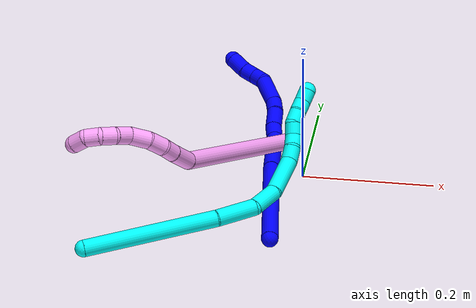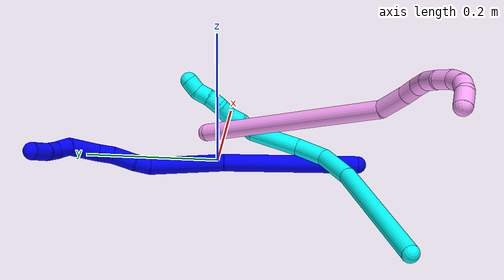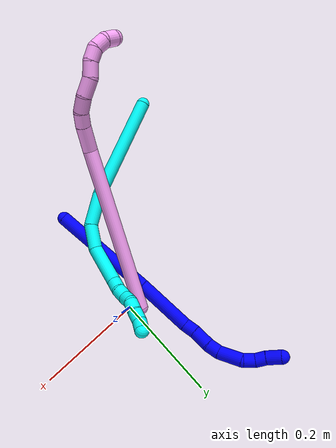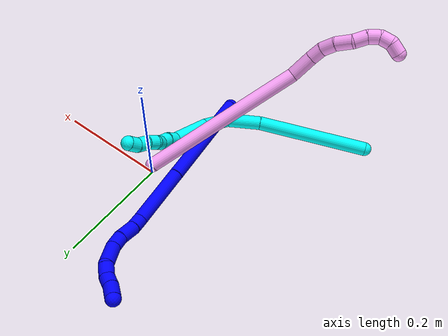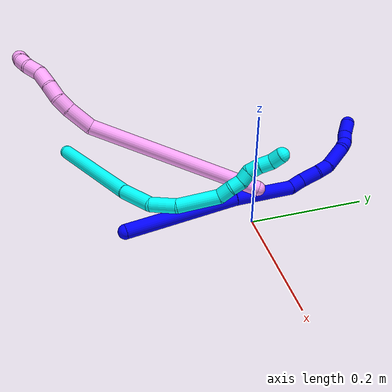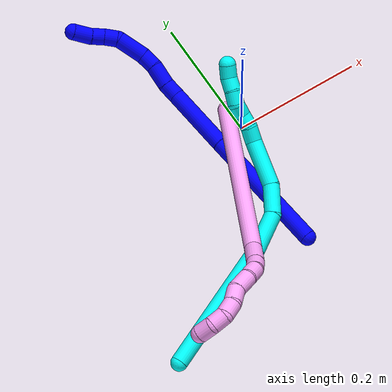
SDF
<sdf version="1.7">
 <world name="default">
  <model name="1">
   <static>0</static>
   <link name="1">
    <collision name="collision-cylinder-e_1_1_4">
     <pose>-0.009485 0.097593 -0.002834 -1.59983 -0.09684 0.099688</pose>
     <geometry><cylinder><radius>0.0125</radius><length>0.196188</length></cylinder></geometry>
     <surface>
      <friction><ode><mu>1.16</mu><mu2>1.16</mu2><slip1>0</slip1><slip2>0</slip2></ode></friction>
      <contact><ode><kp>1e+06</kp><kd>1</kd><max_vel>0</max_vel><min_depth>0.001</min_depth></ode></contact>
     </surface>
    </collision>
    <visual name="visual-cylinder-e_1_1_4">
     <pose>-0.009485 0.097593 -0.002834 -1.59983 -0.09684 0.099688</pose>
     <geometry><cylinder><radius>0.0125</radius><length>0.196188</length></cylinder></geometry>
     <material><ambient>0 0 1 1</ambient></material>
    </visual>
    <collision name="collision-cylinder-e_2_4_5">
     <pose>-0.019426 0.248966 -0.009123 -1.63495 -0.00847 0.009031</pose>
     <geometry><cylinder><radius>0.0125</radius><length>0.107785</length></cylinder></geometry>
     <surface>
      <friction><ode><mu>1.16</mu><mu2>1.16</mu2><slip1>0</slip1><slip2>0</slip2></ode></friction>
      <contact><ode><kp>1e+06</kp><kd>1</kd><max_vel>0</max_vel><min_depth>0.001</min_depth></ode></contact>
     </surface>
    </collision>
    <visual name="visual-cylinder-e_2_4_5">
     <pose>-0.019426 0.248966 -0.009123 -1.63495 -0.00847 0.009031</pose>
     <geometry><cylinder><radius>0.0125</radius><length>0.107785</length></cylinder></geometry>
     <material><ambient>0 0 1 1</ambient></material>
    </visual>
    <collision name="collision-cylinder-e_3_5_6">
     <pose>-0.024044 0.313955 -0.011457 -1.47107 -0.353862 0.320826</pose>
     <geometry><cylinder><radius>0.0125</radius><length>0.024019</length></cylinder></geometry>
     <surface>
      <friction><ode><mu>1.16</mu><mu2>1.16</mu2><slip1>0</slip1><slip2>0</slip2></ode></friction>
      <contact><ode><kp>1e+06</kp><kd>1</kd><max_vel>0</max_vel><min_depth>0.001</min_depth></ode></contact>
     </surface>
    </collision>
    <visual name="visual-cylinder-e_3_5_6">
     <pose>-0.024044 0.313955 -0.011457 -1.47107 -0.353862 0.320826</pose>
     <geometry><cylinder><radius>0.0125</radius><length>0.024019</length></cylinder></geometry>
     <material><ambient>0 0 1 1</ambient></material>
    </visual>
    <collision name="collision-cylinder-e_4_6_7">
     <pose>-0.032453 0.340604 -0.006381 -1.32008 -0.260485 0.202635</pose>
     <geometry><cylinder><radius>0.0125</radius><length>0.032988</length></cylinder></geometry>
     <surface>
      <friction><ode><mu>1.16</mu><mu2>1.16</mu2><slip1>0</slip1><slip2>0</slip2></ode></friction>
      <contact><ode><kp>1e+06</kp><kd>1</kd><max_vel>0</max_vel><min_depth>0.001</min_depth></ode></contact>
     </surface>
    </collision>
    <visual name="visual-cylinder-e_4_6_7">
     <pose>-0.032453 0.340604 -0.006381 -1.32008 -0.260485 0.202635</pose>
     <geometry><cylinder><radius>0.0125</radius><length>0.032988</length></cylinder></geometry>
     <material><ambient>0 0 1 1</ambient></material>
    </visual>
    <collision name="collision-cylinder-e_5_7_8">
     <pose>-0.040402 0.36718 -0.002001 -1.53257 -0.320599 0.308767</pose>
     <geometry><cylinder><radius>0.0125</radius><length>0.023488</length></cylinder></geometry>
     <surface>
      <friction><ode><mu>1.16</mu><mu2>1.16</mu2><slip1>0</slip1><slip2>0</slip2></ode></friction>
      <contact><ode><kp>1e+06</kp><kd>1</kd><max_vel>0</max_vel><min_depth>0.001</min_depth></ode></contact>
     </surface>
    </collision>
    <visual name="visual-cylinder-e_5_7_8">
     <pose>-0.040402 0.36718 -0.002001 -1.53257 -0.320599 0.308767</pose>
     <geometry><cylinder><radius>0.0125</radius><length>0.023488</length></cylinder></geometry>
     <material><ambient>0 0 1 1</ambient></material>
    </visual>
    <collision name="collision-cylinder-e_6_8_9">
     <pose>-0.057604 0.39625 -0.002236 -1.60762 -0.645007 0.667476</pose>
     <geometry><cylinder><radius>0.0125</radius><length>0.044913</length></cylinder></geometry>
     <surface>
      <friction><ode><mu>1.16</mu><mu2>1.16</mu2><slip1>0</slip1><slip2>0</slip2></ode></friction>
      <contact><ode><kp>1e+06</kp><kd>1</kd><max_vel>0</max_vel><min_depth>0.001</min_depth></ode></contact>
     </surface>
    </collision>
    <visual name="visual-cylinder-e_6_8_9">
     <pose>-0.057604 0.39625 -0.002236 -1.60762 -0.645007 0.667476</pose>
     <geometry><cylinder><radius>0.0125</radius><length>0.044913</length></cylinder></geometry>
     <material><ambient>0 0 1 1</ambient></material>
    </visual>
    <collision name="collision-cylinder-e_7_9_10">
     <pose>-0.07673 0.421889 -0.008161 -2.17018 -0.542462 0.969691</pose>
     <geometry><cylinder><radius>0.0125</radius><length>0.021794</length></cylinder></geometry>
     <surface>
      <friction><ode><mu>1.16</mu><mu2>1.16</mu2><slip1>0</slip1><slip2>0</slip2></ode></friction>
      <contact><ode><kp>1e+06</kp><kd>1</kd><max_vel>0</max_vel><min_depth>0.001</min_depth></ode></contact>
     </surface>
    </collision>
    <visual name="visual-cylinder-e_7_9_10">
     <pose>-0.07673 0.421889 -0.008161 -2.17018 -0.542462 0.969691</pose>
     <geometry><cylinder><radius>0.0125</radius><length>0.021794</length></cylinder></geometry>
     <material><ambient>0 0 1 1</ambient></material>
    </visual>
    <collision name="collision-cylinder-e_8_10_11">
     <pose>-0.0904 0.434353 -0.017836 -2.31825 -0.892091 1.66161</pose>
     <geometry><cylinder><radius>0.0125</radius><length>0.02067</length></cylinder></geometry>
     <surface>
      <friction><ode><mu>1.16</mu><mu2>1.16</mu2><slip1>0</slip1><slip2>0</slip2></ode></friction>
      <contact><ode><kp>1e+06</kp><kd>1</kd><max_vel>0</max_vel><min_depth>0.001</min_depth></ode></contact>
     </surface>
    </collision>
    <visual name="visual-cylinder-e_8_10_11">
     <pose>-0.0904 0.434353 -0.017836 -2.31825 -0.892091 1.66161</pose>
     <geometry><cylinder><radius>0.0125</radius><length>0.02067</length></cylinder></geometry>
     <material><ambient>0 0 1 1</ambient></material>
    </visual>
    <collision name="collision-cylinder-e_9_11_2">
     <pose>-0.109429 0.447163 -0.025812 -1.98773 -0.895082 1.27104</pose>
     <geometry><cylinder><radius>0.0125</radius><length>0.028156</length></cylinder></geometry>
     <surface>
      <friction><ode><mu>1.16</mu><mu2>1.16</mu2><slip1>0</slip1><slip2>0</slip2></ode></friction>
      <contact><ode><kp>1e+06</kp><kd>1</kd><max_vel>0</max_vel><min_depth>0.001</min_depth></ode></contact>
     </surface>
    </collision>
    <visual name="visual-cylinder-e_9_11_2">
     <pose>-0.109429 0.447163 -0.025812 -1.98773 -0.895082 1.27104</pose>
     <geometry><cylinder><radius>0.0125</radius><length>0.028156</length></cylinder></geometry>
     <material><ambient>0 0 1 1</ambient></material>
    </visual>
    <collision name="collision-sphere-2">
     <pose>-0.120414 0.455213 -0.029378 0 -0 0</pose>
     <geometry><sphere><radius>0.0125</radius></sphere></geometry>
     <surface>
      <friction><ode><mu>1.16</mu><mu2>1.16</mu2><slip1>0</slip1><slip2>0</slip2></ode></friction>
      <contact><ode><kp>1e+06</kp><kd>1</kd><max_vel>0</max_vel><min_depth>0.001</min_depth></ode></contact>
     </surface>
    </collision>
    <visual name="visual-sphere-2">
     <pose>-0.120414 0.455213 -0.029378 0 -0 0</pose>
     <geometry><sphere><radius>0.0125</radius></sphere></geometry>
     <material><ambient>0 0 1 1</ambient></material>
    </visual>
    <collision name="collision-sphere-11">
     <pose>-0.098445 0.439112 -0.022247 0 -0 0</pose>
     <geometry><sphere><radius>0.0125</radius></sphere></geometry>
     <surface>
      <friction><ode><mu>1.16</mu><mu2>1.16</mu2><slip1>0</slip1><slip2>0</slip2></ode></friction>
      <contact><ode><kp>1e+06</kp><kd>1</kd><max_vel>0</max_vel><min_depth>0.001</min_depth></ode></contact>
     </surface>
    </collision>
    <visual name="visual-sphere-11">
     <pose>-0.098445 0.439112 -0.022247 0 -0 0</pose>
     <geometry><sphere><radius>0.0125</radius></sphere></geometry>
     <material><ambient>0 0 1 1</ambient></material>
    </visual>
    <collision name="collision-sphere-10">
     <pose>-0.082356 0.429595 -0.013426 0 -0 0</pose>
     <geometry><sphere><radius>0.0125</radius></sphere></geometry>
     <surface>
      <friction><ode><mu>1.16</mu><mu2>1.16</mu2><slip1>0</slip1><slip2>0</slip2></ode></friction>
      <contact><ode><kp>1e+06</kp><kd>1</kd><max_vel>0</max_vel><min_depth>0.001</min_depth></ode></contact>
     </surface>
    </collision>
    <visual name="visual-sphere-10">
     <pose>-0.082356 0.429595 -0.013426 0 -0 0</pose>
     <geometry><sphere><radius>0.0125</radius></sphere></geometry>
     <material><ambient>0 0 1 1</ambient></material>
    </visual>
    <collision name="collision-sphere-9">
     <pose>-0.071105 0.414183 -0.002896 0 -0 0</pose>
     <geometry><sphere><radius>0.0125</radius></sphere></geometry>
     <surface>
      <friction><ode><mu>1.16</mu><mu2>1.16</mu2><slip1>0</slip1><slip2>0</slip2></ode></friction>
      <contact><ode><kp>1e+06</kp><kd>1</kd><max_vel>0</max_vel><min_depth>0.001</min_depth></ode></contact>
     </surface>
    </collision>
    <visual name="visual-sphere-9">
     <pose>-0.071105 0.414183 -0.002896 0 -0 0</pose>
     <geometry><sphere><radius>0.0125</radius></sphere></geometry>
     <material><ambient>0 0 1 1</ambient></material>
    </visual>
    <collision name="collision-sphere-4">
     <pose>-0.018969 0.195186 -0.005669 0 -0 0</pose>
     <geometry><sphere><radius>0.0125</radius></sphere></geometry>
     <surface>
      <friction><ode><mu>1.16</mu><mu2>1.16</mu2><slip1>0</slip1><slip2>0</slip2></ode></friction>
      <contact><ode><kp>1e+06</kp><kd>1</kd><max_vel>0</max_vel><min_depth>0.001</min_depth></ode></contact>
     </surface>
    </collision>
    <visual name="visual-sphere-4">
     <pose>-0.018969 0.195186 -0.005669 0 -0 0</pose>
     <geometry><sphere><radius>0.0125</radius></sphere></geometry>
     <material><ambient>0 0 1 1</ambient></material>
    </visual>
    <collision name="collision-sphere-1">
     <geometry><sphere><radius>0.0125</radius></sphere></geometry>
     <surface>
      <friction><ode><mu>1.16</mu><mu2>1.16</mu2><slip1>0</slip1><slip2>0</slip2></ode></friction>
      <contact><ode><kp>1e+06</kp><kd>1</kd><max_vel>0</max_vel><min_depth>0.001</min_depth></ode></contact>
     </surface>
    </collision>
    <visual name="visual-sphere-1">
     <geometry><sphere><radius>0.0125</radius></sphere></geometry>
     <material><ambient>0 0 1 1</ambient></material>
    </visual>
    <collision name="collision-sphere-8">
     <pose>-0.044103 0.378318 -0.001575 0 -0 0</pose>
     <geometry><sphere><radius>0.0125</radius></sphere></geometry>
     <surface>
      <friction><ode><mu>1.16</mu><mu2>1.16</mu2><slip1>0</slip1><slip2>0</slip2></ode></friction>
      <contact><ode><kp>1e+06</kp><kd>1</kd><max_vel>0</max_vel><min_depth>0.001</min_depth></ode></contact>
     </surface>
    </collision>
    <visual name="visual-sphere-8">
     <pose>-0.044103 0.378318 -0.001575 0 -0 0</pose>
     <geometry><sphere><radius>0.0125</radius></sphere></geometry>
     <material><ambient>0 0 1 1</ambient></material>
    </visual>
    <collision name="collision-sphere-5">
     <pose>-0.019882 0.302746 -0.012578 0 -0 0</pose>
     <geometry><sphere><radius>0.0125</radius></sphere></geometry>
     <surface>
      <friction><ode><mu>1.16</mu><mu2>1.16</mu2><slip1>0</slip1><slip2>0</slip2></ode></friction>
      <contact><ode><kp>1e+06</kp><kd>1</kd><max_vel>0</max_vel><min_depth>0.001</min_depth></ode></contact>
     </surface>
    </collision>
    <visual name="visual-sphere-5">
     <pose>-0.019882 0.302746 -0.012578 0 -0 0</pose>
     <geometry><sphere><radius>0.0125</radius></sphere></geometry>
     <material><ambient>0 0 1 1</ambient></material>
    </visual>
    <collision name="collision-sphere-6">
     <pose>-0.028205 0.325165 -0.010335 0 -0 0</pose>
     <geometry><sphere><radius>0.0125</radius></sphere></geometry>
     <surface>
      <friction><ode><mu>1.16</mu><mu2>1.16</mu2><slip1>0</slip1><slip2>0</slip2></ode></friction>
      <contact><ode><kp>1e+06</kp><kd>1</kd><max_vel>0</max_vel><min_depth>0.001</min_depth></ode></contact>
     </surface>
    </collision>
    <visual name="visual-sphere-6">
     <pose>-0.028205 0.325165 -0.010335 0 -0 0</pose>
     <geometry><sphere><radius>0.0125</radius></sphere></geometry>
     <material><ambient>0 0 1 1</ambient></material>
    </visual>
    <collision name="collision-sphere-7">
     <pose>-0.036701 0.356043 -0.002427 0 -0 0</pose>
     <geometry><sphere><radius>0.0125</radius></sphere></geometry>
     <surface>
      <friction><ode><mu>1.16</mu><mu2>1.16</mu2><slip1>0</slip1><slip2>0</slip2></ode></friction>
      <contact><ode><kp>1e+06</kp><kd>1</kd><max_vel>0</max_vel><min_depth>0.001</min_depth></ode></contact>
     </surface>
    </collision>
    <visual name="visual-sphere-7">
     <pose>-0.036701 0.356043 -0.002427 0 -0 0</pose>
     <geometry><sphere><radius>0.0125</radius></sphere></geometry>
     <material><ambient>0 0 1 1</ambient></material>
    </visual>
    <inertial>
     <pose>-0.031521 0.243884 -0.006892 0 -0 0</pose>
     <mass>0.5</mass>
     <inertia>
      <ixx>0.000819</ixx>
      <ixy>0</ixy>
      <ixz>0</ixz>
      <iyy>9.9e-05</iyy>
      <iyz>0</iyz>
      <izz>-0.000688</izz>
     </inertia>
    </inertial>
   </link>
   <pose>-0.020599 -0.208778 0.011798 -0.02393 0.789177 0.024272</pose>
  </model>
  <model name="3">
   <static>0</static>
   <link name="3">
    <collision name="collision-cylinder-e_1_1_4">
     <pose>0.067724 0.040359 -0.060933 -2.55659 0.747336 -1.8317</pose>
     <geometry><cylinder><radius>0.0125</radius><length>0.199281</length></cylinder></geometry>
     <surface>
      <friction><ode><mu>1.16</mu><mu2>1.16</mu2><slip1>0</slip1><slip2>0</slip2></ode></friction>
      <contact><ode><kp>1e+06</kp><kd>1</kd><max_vel>0</max_vel><min_depth>0.001</min_depth></ode></contact>
     </surface>
    </collision>
    <visual name="visual-cylinder-e_1_1_4">
     <pose>0.067724 0.040359 -0.060933 -2.55659 0.747336 -1.8317</pose>
     <geometry><cylinder><radius>0.0125</radius><length>0.199281</length></cylinder></geometry>
     <material><ambient>0.003922 1 0.996078 1</ambient></material>
    </visual>
    <collision name="collision-cylinder-e_2_4_5">
     <pose>0.152649 0.096869 -0.141086 -2.44273 0.600674 -1.40893</pose>
     <geometry><cylinder><radius>0.0125</radius><length>0.060866</length></cylinder></geometry>
     <surface>
      <friction><ode><mu>1.16</mu><mu2>1.16</mu2><slip1>0</slip1><slip2>0</slip2></ode></friction>
      <contact><ode><kp>1e+06</kp><kd>1</kd><max_vel>0</max_vel><min_depth>0.001</min_depth></ode></contact>
     </surface>
    </collision>
    <visual name="visual-cylinder-e_2_4_5">
     <pose>0.152649 0.096869 -0.141086 -2.44273 0.600674 -1.40893</pose>
     <geometry><cylinder><radius>0.0125</radius><length>0.060866</length></cylinder></geometry>
     <material><ambient>0.003922 1 0.996078 1</ambient></material>
    </visual>
    <collision name="collision-cylinder-e_3_5_6">
     <pose>0.175675 0.132021 -0.171334 -2.09668 0.259212 -0.445192</pose>
     <geometry><cylinder><radius>0.0125</radius><length>0.045456</length></cylinder></geometry>
     <surface>
      <friction><ode><mu>1.16</mu><mu2>1.16</mu2><slip1>0</slip1><slip2>0</slip2></ode></friction>
      <contact><ode><kp>1e+06</kp><kd>1</kd><max_vel>0</max_vel><min_depth>0.001</min_depth></ode></contact>
     </surface>
    </collision>
    <visual name="visual-cylinder-e_3_5_6">
     <pose>0.175675 0.132021 -0.171334 -2.09668 0.259212 -0.445192</pose>
     <geometry><cylinder><radius>0.0125</radius><length>0.045456</length></cylinder></geometry>
     <material><ambient>0.003922 1 0.996078 1</ambient></material>
    </visual>
    <collision name="collision-cylinder-e_4_6_7">
     <pose>0.183419 0.1853 -0.191167 -1.82223 0.054135 -0.069787</pose>
     <geometry><cylinder><radius>0.0125</radius><length>0.070888</length></cylinder></geometry>
     <surface>
      <friction><ode><mu>1.16</mu><mu2>1.16</mu2><slip1>0</slip1><slip2>0</slip2></ode></friction>
      <contact><ode><kp>1e+06</kp><kd>1</kd><max_vel>0</max_vel><min_depth>0.001</min_depth></ode></contact>
     </surface>
    </collision>
    <visual name="visual-cylinder-e_4_6_7">
     <pose>0.183419 0.1853 -0.191167 -1.82223 0.054135 -0.069787</pose>
     <geometry><cylinder><radius>0.0125</radius><length>0.070888</length></cylinder></geometry>
     <material><ambient>0.003922 1 0.996078 1</ambient></material>
    </visual>
    <collision name="collision-cylinder-e_5_7_8">
     <pose>0.188736 0.230496 -0.198038 -1.39541 0.29753 -0.249988</pose>
     <geometry><cylinder><radius>0.0125</radius><length>0.023192</length></cylinder></geometry>
     <surface>
      <friction><ode><mu>1.16</mu><mu2>1.16</mu2><slip1>0</slip1><slip2>0</slip2></ode></friction>
      <contact><ode><kp>1e+06</kp><kd>1</kd><max_vel>0</max_vel><min_depth>0.001</min_depth></ode></contact>
     </surface>
    </collision>
    <visual name="visual-cylinder-e_5_7_8">
     <pose>0.188736 0.230496 -0.198038 -1.39541 0.29753 -0.249988</pose>
     <geometry><cylinder><radius>0.0125</radius><length>0.023192</length></cylinder></geometry>
     <material><ambient>0.003922 1 0.996078 1</ambient></material>
    </visual>
    <collision name="collision-cylinder-e_6_8_9">
     <pose>0.192374 0.251469 -0.195311 -1.49218 0.023639 -0.02185</pose>
     <geometry><cylinder><radius>0.0125</radius><length>0.020182</length></cylinder></geometry>
     <surface>
      <friction><ode><mu>1.16</mu><mu2>1.16</mu2><slip1>0</slip1><slip2>0</slip2></ode></friction>
      <contact><ode><kp>1e+06</kp><kd>1</kd><max_vel>0</max_vel><min_depth>0.001</min_depth></ode></contact>
     </surface>
    </collision>
    <visual name="visual-cylinder-e_6_8_9">
     <pose>0.192374 0.251469 -0.195311 -1.49218 0.023639 -0.02185</pose>
     <geometry><cylinder><radius>0.0125</radius><length>0.020182</length></cylinder></geometry>
     <material><ambient>0.003922 1 0.996078 1</ambient></material>
    </visual>
    <collision name="collision-cylinder-e_7_9_10">
     <pose>0.194751 0.270225 -0.190072 -1.09827 0.215488 -0.13218</pose>
     <geometry><cylinder><radius>0.0125</radius><length>0.020004</length></cylinder></geometry>
     <surface>
      <friction><ode><mu>1.16</mu><mu2>1.16</mu2><slip1>0</slip1><slip2>0</slip2></ode></friction>
      <contact><ode><kp>1e+06</kp><kd>1</kd><max_vel>0</max_vel><min_depth>0.001</min_depth></ode></contact>
     </surface>
    </collision>
    <visual name="visual-cylinder-e_7_9_10">
     <pose>0.194751 0.270225 -0.190072 -1.09827 0.215488 -0.13218</pose>
     <geometry><cylinder><radius>0.0125</radius><length>0.020004</length></cylinder></geometry>
     <material><ambient>0.003922 1 0.996078 1</ambient></material>
    </visual>
    <collision name="collision-cylinder-e_8_10_11">
     <pose>0.199993 0.288441 -0.185393 -1.54641 0.315173 -0.307699</pose>
     <geometry><cylinder><radius>0.0125</radius><length>0.020024</length></cylinder></geometry>
     <surface>
      <friction><ode><mu>1.16</mu><mu2>1.16</mu2><slip1>0</slip1><slip2>0</slip2></ode></friction>
      <contact><ode><kp>1e+06</kp><kd>1</kd><max_vel>0</max_vel><min_depth>0.001</min_depth></ode></contact>
     </surface>
    </collision>
    <visual name="visual-cylinder-e_8_10_11">
     <pose>0.199993 0.288441 -0.185393 -1.54641 0.315173 -0.307699</pose>
     <geometry><cylinder><radius>0.0125</radius><length>0.020024</length></cylinder></geometry>
     <material><ambient>0.003922 1 0.996078 1</ambient></material>
    </visual>
    <collision name="collision-cylinder-e_9_11_12">
     <pose>0.205024 0.307717 -0.186392 -1.69631 0.19351 -0.219266</pose>
     <geometry><cylinder><radius>0.0125</radius><length>0.020048</length></cylinder></geometry>
     <surface>
      <friction><ode><mu>1.16</mu><mu2>1.16</mu2><slip1>0</slip1><slip2>0</slip2></ode></friction>
      <contact><ode><kp>1e+06</kp><kd>1</kd><max_vel>0</max_vel><min_depth>0.001</min_depth></ode></contact>
     </surface>
    </collision>
    <visual name="visual-cylinder-e_9_11_12">
     <pose>0.205024 0.307717 -0.186392 -1.69631 0.19351 -0.219266</pose>
     <geometry><cylinder><radius>0.0125</radius><length>0.020048</length></cylinder></geometry>
     <material><ambient>0.003922 1 0.996078 1</ambient></material>
    </visual>
    <collision name="collision-cylinder-e_10_12_2">
     <pose>0.211792 0.326179 -0.186419 -1.43319 0.503583 -0.440881</pose>
     <geometry><cylinder><radius>0.0125</radius><length>0.020061</length></cylinder></geometry>
     <surface>
      <friction><ode><mu>1.16</mu><mu2>1.16</mu2><slip1>0</slip1><slip2>0</slip2></ode></friction>
      <contact><ode><kp>1e+06</kp><kd>1</kd><max_vel>0</max_vel><min_depth>0.001</min_depth></ode></contact>
     </surface>
    </collision>
    <visual name="visual-cylinder-e_10_12_2">
     <pose>0.211792 0.326179 -0.186419 -1.43319 0.503583 -0.440881</pose>
     <geometry><cylinder><radius>0.0125</radius><length>0.020061</length></cylinder></geometry>
     <material><ambient>0.003922 1 0.996078 1</ambient></material>
    </visual>
    <collision name="collision-sphere-2">
     <pose>0.216633 0.334881 -0.185214 0 -0 0</pose>
     <geometry><sphere><radius>0.0125</radius></sphere></geometry>
     <surface>
      <friction><ode><mu>1.16</mu><mu2>1.16</mu2><slip1>0</slip1><slip2>0</slip2></ode></friction>
      <contact><ode><kp>1e+06</kp><kd>1</kd><max_vel>0</max_vel><min_depth>0.001</min_depth></ode></contact>
     </surface>
    </collision>
    <visual name="visual-sphere-2">
     <pose>0.216633 0.334881 -0.185214 0 -0 0</pose>
     <geometry><sphere><radius>0.0125</radius></sphere></geometry>
     <material><ambient>0.003922 1 0.996078 1</ambient></material>
    </visual>
    <collision name="collision-sphere-12">
     <pose>0.206952 0.317476 -0.187624 0 -0 0</pose>
     <geometry><sphere><radius>0.0125</radius></sphere></geometry>
     <surface>
      <friction><ode><mu>1.16</mu><mu2>1.16</mu2><slip1>0</slip1><slip2>0</slip2></ode></friction>
      <contact><ode><kp>1e+06</kp><kd>1</kd><max_vel>0</max_vel><min_depth>0.001</min_depth></ode></contact>
     </surface>
    </collision>
    <visual name="visual-sphere-12">
     <pose>0.206952 0.317476 -0.187624 0 -0 0</pose>
     <geometry><sphere><radius>0.0125</radius></sphere></geometry>
     <material><ambient>0.003922 1 0.996078 1</ambient></material>
    </visual>
    <collision name="collision-sphere-11">
     <pose>0.203097 0.297957 -0.185161 0 -0 0</pose>
     <geometry><sphere><radius>0.0125</radius></sphere></geometry>
     <surface>
      <friction><ode><mu>1.16</mu><mu2>1.16</mu2><slip1>0</slip1><slip2>0</slip2></ode></friction>
      <contact><ode><kp>1e+06</kp><kd>1</kd><max_vel>0</max_vel><min_depth>0.001</min_depth></ode></contact>
     </surface>
    </collision>
    <visual name="visual-sphere-11">
     <pose>0.203097 0.297957 -0.185161 0 -0 0</pose>
     <geometry><sphere><radius>0.0125</radius></sphere></geometry>
     <material><ambient>0.003922 1 0.996078 1</ambient></material>
    </visual>
    <collision name="collision-sphere-10">
     <pose>0.19689 0.278925 -0.185625 0 -0 0</pose>
     <geometry><sphere><radius>0.0125</radius></sphere></geometry>
     <surface>
      <friction><ode><mu>1.16</mu><mu2>1.16</mu2><slip1>0</slip1><slip2>0</slip2></ode></friction>
      <contact><ode><kp>1e+06</kp><kd>1</kd><max_vel>0</max_vel><min_depth>0.001</min_depth></ode></contact>
     </surface>
    </collision>
    <visual name="visual-sphere-10">
     <pose>0.19689 0.278925 -0.185625 0 -0 0</pose>
     <geometry><sphere><radius>0.0125</radius></sphere></geometry>
     <material><ambient>0.003922 1 0.996078 1</ambient></material>
    </visual>
    <collision name="collision-sphere-9">
     <pose>0.192612 0.261526 -0.194519 0 -0 0</pose>
     <geometry><sphere><radius>0.0125</radius></sphere></geometry>
     <surface>
      <friction><ode><mu>1.16</mu><mu2>1.16</mu2><slip1>0</slip1><slip2>0</slip2></ode></friction>
      <contact><ode><kp>1e+06</kp><kd>1</kd><max_vel>0</max_vel><min_depth>0.001</min_depth></ode></contact>
     </surface>
    </collision>
    <visual name="visual-sphere-9">
     <pose>0.192612 0.261526 -0.194519 0 -0 0</pose>
     <geometry><sphere><radius>0.0125</radius></sphere></geometry>
     <material><ambient>0.003922 1 0.996078 1</ambient></material>
    </visual>
    <collision name="collision-sphere-4">
     <pose>0.135448 0.080717 -0.121865 0 -0 0</pose>
     <geometry><sphere><radius>0.0125</radius></sphere></geometry>
     <surface>
      <friction><ode><mu>1.16</mu><mu2>1.16</mu2><slip1>0</slip1><slip2>0</slip2></ode></friction>
      <contact><ode><kp>1e+06</kp><kd>1</kd><max_vel>0</max_vel><min_depth>0.001</min_depth></ode></contact>
     </surface>
    </collision>
    <visual name="visual-sphere-4">
     <pose>0.135448 0.080717 -0.121865 0 -0 0</pose>
     <geometry><sphere><radius>0.0125</radius></sphere></geometry>
     <material><ambient>0.003922 1 0.996078 1</ambient></material>
    </visual>
    <collision name="collision-sphere-1">
     <geometry><sphere><radius>0.0125</radius></sphere></geometry>
     <surface>
      <friction><ode><mu>1.16</mu><mu2>1.16</mu2><slip1>0</slip1><slip2>0</slip2></ode></friction>
      <contact><ode><kp>1e+06</kp><kd>1</kd><max_vel>0</max_vel><min_depth>0.001</min_depth></ode></contact>
     </surface>
    </collision>
    <visual name="visual-sphere-1">
     <geometry><sphere><radius>0.0125</radius></sphere></geometry>
     <material><ambient>0.003922 1 0.996078 1</ambient></material>
    </visual>
    <collision name="collision-sphere-8">
     <pose>0.192135 0.241412 -0.196103 0 -0 0</pose>
     <geometry><sphere><radius>0.0125</radius></sphere></geometry>
     <surface>
      <friction><ode><mu>1.16</mu><mu2>1.16</mu2><slip1>0</slip1><slip2>0</slip2></ode></friction>
      <contact><ode><kp>1e+06</kp><kd>1</kd><max_vel>0</max_vel><min_depth>0.001</min_depth></ode></contact>
     </surface>
    </collision>
    <visual name="visual-sphere-8">
     <pose>0.192135 0.241412 -0.196103 0 -0 0</pose>
     <geometry><sphere><radius>0.0125</radius></sphere></geometry>
     <material><ambient>0.003922 1 0.996078 1</ambient></material>
    </visual>
    <collision name="collision-sphere-5">
     <pose>0.16985 0.11302 -0.160306 0 -0 0</pose>
     <geometry><sphere><radius>0.0125</radius></sphere></geometry>
     <surface>
      <friction><ode><mu>1.16</mu><mu2>1.16</mu2><slip1>0</slip1><slip2>0</slip2></ode></friction>
      <contact><ode><kp>1e+06</kp><kd>1</kd><max_vel>0</max_vel><min_depth>0.001</min_depth></ode></contact>
     </surface>
    </collision>
    <visual name="visual-sphere-5">
     <pose>0.16985 0.11302 -0.160306 0 -0 0</pose>
     <geometry><sphere><radius>0.0125</radius></sphere></geometry>
     <material><ambient>0.003922 1 0.996078 1</ambient></material>
    </visual>
    <collision name="collision-sphere-6">
     <pose>0.181501 0.151021 -0.182362 0 -0 0</pose>
     <geometry><sphere><radius>0.0125</radius></sphere></geometry>
     <surface>
      <friction><ode><mu>1.16</mu><mu2>1.16</mu2><slip1>0</slip1><slip2>0</slip2></ode></friction>
      <contact><ode><kp>1e+06</kp><kd>1</kd><max_vel>0</max_vel><min_depth>0.001</min_depth></ode></contact>
     </surface>
    </collision>
    <visual name="visual-sphere-6">
     <pose>0.181501 0.151021 -0.182362 0 -0 0</pose>
     <geometry><sphere><radius>0.0125</radius></sphere></geometry>
     <material><ambient>0.003922 1 0.996078 1</ambient></material>
    </visual>
    <collision name="collision-sphere-7">
     <pose>0.185336 0.219579 -0.199972 0 -0 0</pose>
     <geometry><sphere><radius>0.0125</radius></sphere></geometry>
     <surface>
      <friction><ode><mu>1.16</mu><mu2>1.16</mu2><slip1>0</slip1><slip2>0</slip2></ode></friction>
      <contact><ode><kp>1e+06</kp><kd>1</kd><max_vel>0</max_vel><min_depth>0.001</min_depth></ode></contact>
     </surface>
    </collision>
    <visual name="visual-sphere-7">
     <pose>0.185336 0.219579 -0.199972 0 -0 0</pose>
     <geometry><sphere><radius>0.0125</radius></sphere></geometry>
     <material><ambient>0.003922 1 0.996078 1</ambient></material>
    </visual>
    <inertial>
     <pose>0.136588 0.13478 -0.13119 0 -0 0</pose>
     <mass>0.5</mass>
     <inertia>
      <ixx>-0.000556</ixx>
      <ixy>0</ixy>
      <ixz>0</ixz>
      <iyy>-9.1e-05</iyy>
      <iyz>0</iyz>
      <izz>-0.000816</izz>
     </inertia>
    </inertial>
   </link>
   <pose>-0.281652 -0.275104 0.012701 0.473598 -0.606383 -0.277845</pose>
  </model>
  <model name="4">
   <static>0</static>
   <link name="4">
    <collision name="collision-cylinder-e_1_1_4">
     <pose>-0.001889 -0.019462 0.143504 0.134796 -0.013044 -0.000881</pose>
     <geometry><cylinder><radius>0.0125</radius><length>0.289659</length></cylinder></geometry>
     <surface>
      <friction><ode><mu>1.16</mu><mu2>1.16</mu2><slip1>0</slip1><slip2>0</slip2></ode></friction>
      <contact><ode><kp>1e+06</kp><kd>1</kd><max_vel>0</max_vel><min_depth>0.001</min_depth></ode></contact>
     </surface>
    </collision>
    <visual name="visual-cylinder-e_1_1_4">
     <pose>-0.001889 -0.019462 0.143504 0.134796 -0.013044 -0.000881</pose>
     <geometry><cylinder><radius>0.0125</radius><length>0.289659</length></cylinder></geometry>
     <material><ambient>1 0.65098 0.996078 1</ambient></material>
    </visual>
    <collision name="collision-cylinder-e_2_4_5">
     <pose>-0.009315 -0.035981 0.307886 -0.140003 -0.256797 0.018105</pose>
     <geometry><cylinder><radius>0.0125</radius><length>0.043599</length></cylinder></geometry>
     <surface>
      <friction><ode><mu>1.16</mu><mu2>1.16</mu2><slip1>0</slip1><slip2>0</slip2></ode></friction>
      <contact><ode><kp>1e+06</kp><kd>1</kd><max_vel>0</max_vel><min_depth>0.001</min_depth></ode></contact>
     </surface>
    </collision>
    <visual name="visual-cylinder-e_2_4_5">
     <pose>-0.009315 -0.035981 0.307886 -0.140003 -0.256797 0.018105</pose>
     <geometry><cylinder><radius>0.0125</radius><length>0.043599</length></cylinder></geometry>
     <material><ambient>1 0.65098 0.996078 1</ambient></material>
    </visual>
    <collision name="collision-cylinder-e_3_5_6">
     <pose>-0.019374 -0.031594 0.339666 -0.131777 -0.390084 0.026069</pose>
     <geometry><cylinder><radius>0.0125</radius><length>0.023783</length></cylinder></geometry>
     <surface>
      <friction><ode><mu>1.16</mu><mu2>1.16</mu2><slip1>0</slip1><slip2>0</slip2></ode></friction>
      <contact><ode><kp>1e+06</kp><kd>1</kd><max_vel>0</max_vel><min_depth>0.001</min_depth></ode></contact>
     </surface>
    </collision>
    <visual name="visual-cylinder-e_3_5_6">
     <pose>-0.019374 -0.031594 0.339666 -0.131777 -0.390084 0.026069</pose>
     <geometry><cylinder><radius>0.0125</radius><length>0.023783</length></cylinder></geometry>
     <material><ambient>1 0.65098 0.996078 1</ambient></material>
    </visual>
    <collision name="collision-cylinder-e_4_6_7">
     <pose>-0.031535 -0.031426 0.360859 0.123506 -0.635001 -0.040632</pose>
     <geometry><cylinder><radius>0.0125</radius><length>0.025758</length></cylinder></geometry>
     <surface>
      <friction><ode><mu>1.16</mu><mu2>1.16</mu2><slip1>0</slip1><slip2>0</slip2></ode></friction>
      <contact><ode><kp>1e+06</kp><kd>1</kd><max_vel>0</max_vel><min_depth>0.001</min_depth></ode></contact>
     </surface>
    </collision>
    <visual name="visual-cylinder-e_4_6_7">
     <pose>-0.031535 -0.031426 0.360859 0.123506 -0.635001 -0.040632</pose>
     <geometry><cylinder><radius>0.0125</radius><length>0.025758</length></cylinder></geometry>
     <material><ambient>1 0.65098 0.996078 1</ambient></material>
    </visual>
    <collision name="collision-cylinder-e_5_7_8">
     <pose>-0.04811 -0.037752 0.382135 0.430691 -0.636397 -0.143852</pose>
     <geometry><cylinder><radius>0.0125</radius><length>0.03007</length></cylinder></geometry>
     <surface>
      <friction><ode><mu>1.16</mu><mu2>1.16</mu2><slip1>0</slip1><slip2>0</slip2></ode></friction>
      <contact><ode><kp>1e+06</kp><kd>1</kd><max_vel>0</max_vel><min_depth>0.001</min_depth></ode></contact>
     </surface>
    </collision>
    <visual name="visual-cylinder-e_5_7_8">
     <pose>-0.04811 -0.037752 0.382135 0.430691 -0.636397 -0.143852</pose>
     <geometry><cylinder><radius>0.0125</radius><length>0.03007</length></cylinder></geometry>
     <material><ambient>1 0.65098 0.996078 1</ambient></material>
    </visual>
    <collision name="collision-cylinder-e_6_8_9">
     <pose>-0.060252 -0.046588 0.404063 0.333354 -0.270218 -0.045732</pose>
     <geometry><cylinder><radius>0.0125</radius><length>0.024027</length></cylinder></geometry>
     <surface>
      <friction><ode><mu>1.16</mu><mu2>1.16</mu2><slip1>0</slip1><slip2>0</slip2></ode></friction>
      <contact><ode><kp>1e+06</kp><kd>1</kd><max_vel>0</max_vel><min_depth>0.001</min_depth></ode></contact>
     </surface>
    </collision>
    <visual name="visual-cylinder-e_6_8_9">
     <pose>-0.060252 -0.046588 0.404063 0.333354 -0.270218 -0.045732</pose>
     <geometry><cylinder><radius>0.0125</radius><length>0.024027</length></cylinder></geometry>
     <material><ambient>1 0.65098 0.996078 1</ambient></material>
    </visual>
    <collision name="collision-cylinder-e_7_9_10">
     <pose>-0.068059 -0.056173 0.422651 0.648558 -0.447083 -0.152543</pose>
     <geometry><cylinder><radius>0.0125</radius><length>0.021282</length></cylinder></geometry>
     <surface>
      <friction><ode><mu>1.16</mu><mu2>1.16</mu2><slip1>0</slip1><slip2>0</slip2></ode></friction>
      <contact><ode><kp>1e+06</kp><kd>1</kd><max_vel>0</max_vel><min_depth>0.001</min_depth></ode></contact>
     </surface>
    </collision>
    <visual name="visual-cylinder-e_7_9_10">
     <pose>-0.068059 -0.056173 0.422651 0.648558 -0.447083 -0.152543</pose>
     <geometry><cylinder><radius>0.0125</radius><length>0.021282</length></cylinder></geometry>
     <material><ambient>1 0.65098 0.996078 1</ambient></material>
    </visual>
    <collision name="collision-cylinder-e_8_10_11">
     <pose>-0.078088 -0.070164 0.433431 1.20564 -0.553999 -0.386488</pose>
     <geometry><cylinder><radius>0.0125</radius><length>0.020635</length></cylinder></geometry>
     <surface>
      <friction><ode><mu>1.16</mu><mu2>1.16</mu2><slip1>0</slip1><slip2>0</slip2></ode></friction>
      <contact><ode><kp>1e+06</kp><kd>1</kd><max_vel>0</max_vel><min_depth>0.001</min_depth></ode></contact>
     </surface>
    </collision>
    <visual name="visual-cylinder-e_8_10_11">
     <pose>-0.078088 -0.070164 0.433431 1.20564 -0.553999 -0.386488</pose>
     <geometry><cylinder><radius>0.0125</radius><length>0.020635</length></cylinder></geometry>
     <material><ambient>1 0.65098 0.996078 1</ambient></material>
    </visual>
    <collision name="collision-cylinder-e_9_11_2">
     <pose>-0.086659 -0.088418 0.435481 1.67809 -0.301273 -0.334862</pose>
     <geometry><cylinder><radius>0.0125</radius><length>0.021188</length></cylinder></geometry>
     <surface>
      <friction><ode><mu>1.16</mu><mu2>1.16</mu2><slip1>0</slip1><slip2>0</slip2></ode></friction>
      <contact><ode><kp>1e+06</kp><kd>1</kd><max_vel>0</max_vel><min_depth>0.001</min_depth></ode></contact>
     </surface>
    </collision>
    <visual name="visual-cylinder-e_9_11_2">
     <pose>-0.086659 -0.088418 0.435481 1.67809 -0.301273 -0.334862</pose>
     <geometry><cylinder><radius>0.0125</radius><length>0.021188</length></cylinder></geometry>
     <material><ambient>1 0.65098 0.996078 1</ambient></material>
    </visual>
    <collision name="collision-sphere-2">
     <pose>-0.089803 -0.098477 0.434397 0 -0 0</pose>
     <geometry><sphere><radius>0.0125</radius></sphere></geometry>
     <surface>
      <friction><ode><mu>1.16</mu><mu2>1.16</mu2><slip1>0</slip1><slip2>0</slip2></ode></friction>
      <contact><ode><kp>1e+06</kp><kd>1</kd><max_vel>0</max_vel><min_depth>0.001</min_depth></ode></contact>
     </surface>
    </collision>
    <visual name="visual-sphere-2">
     <pose>-0.089803 -0.098477 0.434397 0 -0 0</pose>
     <geometry><sphere><radius>0.0125</radius></sphere></geometry>
     <material><ambient>1 0.65098 0.996078 1</ambient></material>
    </visual>
    <collision name="collision-sphere-11">
     <pose>-0.083516 -0.07836 0.436564 0 -0 0</pose>
     <geometry><sphere><radius>0.0125</radius></sphere></geometry>
     <surface>
      <friction><ode><mu>1.16</mu><mu2>1.16</mu2><slip1>0</slip1><slip2>0</slip2></ode></friction>
      <contact><ode><kp>1e+06</kp><kd>1</kd><max_vel>0</max_vel><min_depth>0.001</min_depth></ode></contact>
     </surface>
    </collision>
    <visual name="visual-sphere-11">
     <pose>-0.083516 -0.07836 0.436564 0 -0 0</pose>
     <geometry><sphere><radius>0.0125</radius></sphere></geometry>
     <material><ambient>1 0.65098 0.996078 1</ambient></material>
    </visual>
    <collision name="collision-sphere-10">
     <pose>-0.07266 -0.061969 0.430298 0 -0 0</pose>
     <geometry><sphere><radius>0.0125</radius></sphere></geometry>
     <surface>
      <friction><ode><mu>1.16</mu><mu2>1.16</mu2><slip1>0</slip1><slip2>0</slip2></ode></friction>
      <contact><ode><kp>1e+06</kp><kd>1</kd><max_vel>0</max_vel><min_depth>0.001</min_depth></ode></contact>
     </surface>
    </collision>
    <visual name="visual-sphere-10">
     <pose>-0.07266 -0.061969 0.430298 0 -0 0</pose>
     <geometry><sphere><radius>0.0125</radius></sphere></geometry>
     <material><ambient>1 0.65098 0.996078 1</ambient></material>
    </visual>
    <collision name="collision-sphere-9">
     <pose>-0.063459 -0.050377 0.415004 0 -0 0</pose>
     <geometry><sphere><radius>0.0125</radius></sphere></geometry>
     <surface>
      <friction><ode><mu>1.16</mu><mu2>1.16</mu2><slip1>0</slip1><slip2>0</slip2></ode></friction>
      <contact><ode><kp>1e+06</kp><kd>1</kd><max_vel>0</max_vel><min_depth>0.001</min_depth></ode></contact>
     </surface>
    </collision>
    <visual name="visual-sphere-9">
     <pose>-0.063459 -0.050377 0.415004 0 -0 0</pose>
     <geometry><sphere><radius>0.0125</radius></sphere></geometry>
     <material><ambient>1 0.65098 0.996078 1</ambient></material>
    </visual>
    <collision name="collision-sphere-4">
     <pose>-0.003778 -0.038924 0.287007 0 -0 0</pose>
     <geometry><sphere><radius>0.0125</radius></sphere></geometry>
     <surface>
      <friction><ode><mu>1.16</mu><mu2>1.16</mu2><slip1>0</slip1><slip2>0</slip2></ode></friction>
      <contact><ode><kp>1e+06</kp><kd>1</kd><max_vel>0</max_vel><min_depth>0.001</min_depth></ode></contact>
     </surface>
    </collision>
    <visual name="visual-sphere-4">
     <pose>-0.003778 -0.038924 0.287007 0 -0 0</pose>
     <geometry><sphere><radius>0.0125</radius></sphere></geometry>
     <material><ambient>1 0.65098 0.996078 1</ambient></material>
    </visual>
    <collision name="collision-sphere-1">
     <geometry><sphere><radius>0.0125</radius></sphere></geometry>
     <surface>
      <friction><ode><mu>1.16</mu><mu2>1.16</mu2><slip1>0</slip1><slip2>0</slip2></ode></friction>
      <contact><ode><kp>1e+06</kp><kd>1</kd><max_vel>0</max_vel><min_depth>0.001</min_depth></ode></contact>
     </surface>
    </collision>
    <visual name="visual-sphere-1">
     <geometry><sphere><radius>0.0125</radius></sphere></geometry>
     <material><ambient>1 0.65098 0.996078 1</ambient></material>
    </visual>
    <collision name="collision-sphere-8">
     <pose>-0.057045 -0.0428 0.393123 0 -0 0</pose>
     <geometry><sphere><radius>0.0125</radius></sphere></geometry>
     <surface>
      <friction><ode><mu>1.16</mu><mu2>1.16</mu2><slip1>0</slip1><slip2>0</slip2></ode></friction>
      <contact><ode><kp>1e+06</kp><kd>1</kd><max_vel>0</max_vel><min_depth>0.001</min_depth></ode></contact>
     </surface>
    </collision>
    <visual name="visual-sphere-8">
     <pose>-0.057045 -0.0428 0.393123 0 -0 0</pose>
     <geometry><sphere><radius>0.0125</radius></sphere></geometry>
     <material><ambient>1 0.65098 0.996078 1</ambient></material>
    </visual>
    <collision name="collision-sphere-5">
     <pose>-0.014852 -0.033039 0.328764 0 -0 0</pose>
     <geometry><sphere><radius>0.0125</radius></sphere></geometry>
     <surface>
      <friction><ode><mu>1.16</mu><mu2>1.16</mu2><slip1>0</slip1><slip2>0</slip2></ode></friction>
      <contact><ode><kp>1e+06</kp><kd>1</kd><max_vel>0</max_vel><min_depth>0.001</min_depth></ode></contact>
     </surface>
    </collision>
    <visual name="visual-sphere-5">
     <pose>-0.014852 -0.033039 0.328764 0 -0 0</pose>
     <geometry><sphere><radius>0.0125</radius></sphere></geometry>
     <material><ambient>1 0.65098 0.996078 1</ambient></material>
    </visual>
    <collision name="collision-sphere-6">
     <pose>-0.023895 -0.030149 0.350569 0 -0 0</pose>
     <geometry><sphere><radius>0.0125</radius></sphere></geometry>
     <surface>
      <friction><ode><mu>1.16</mu><mu2>1.16</mu2><slip1>0</slip1><slip2>0</slip2></ode></friction>
      <contact><ode><kp>1e+06</kp><kd>1</kd><max_vel>0</max_vel><min_depth>0.001</min_depth></ode></contact>
     </surface>
    </collision>
    <visual name="visual-sphere-6">
     <pose>-0.023895 -0.030149 0.350569 0 -0 0</pose>
     <geometry><sphere><radius>0.0125</radius></sphere></geometry>
     <material><ambient>1 0.65098 0.996078 1</ambient></material>
    </visual>
    <collision name="collision-sphere-7">
     <pose>-0.039174 -0.032703 0.371148 0 -0 0</pose>
     <geometry><sphere><radius>0.0125</radius></sphere></geometry>
     <surface>
      <friction><ode><mu>1.16</mu><mu2>1.16</mu2><slip1>0</slip1><slip2>0</slip2></ode></friction>
      <contact><ode><kp>1e+06</kp><kd>1</kd><max_vel>0</max_vel><min_depth>0.001</min_depth></ode></contact>
     </surface>
    </collision>
    <visual name="visual-sphere-7">
     <pose>-0.039174 -0.032703 0.371148 0 -0 0</pose>
     <geometry><sphere><radius>0.0125</radius></sphere></geometry>
     <material><ambient>1 0.65098 0.996078 1</ambient></material>
    </visual>
    <inertial>
     <pose>-0.020033 -0.031076 0.241457 0 -0 0</pose>
     <mass>0.5</mass>
     <inertia>
      <ixx>0.002047</ixx>
      <ixy>0</ixy>
      <ixz>0</ixz>
      <iyy>0.002027</iyy>
      <iyz>0</iyz>
      <izz>0.000347</izz>
     </inertia>
    </inertial>
   </link>
   <pose>-0.018798 0.013888 0.053101 1.05071 0.575593 -0.63945</pose>
  </model>
 </world>
</sdf>
